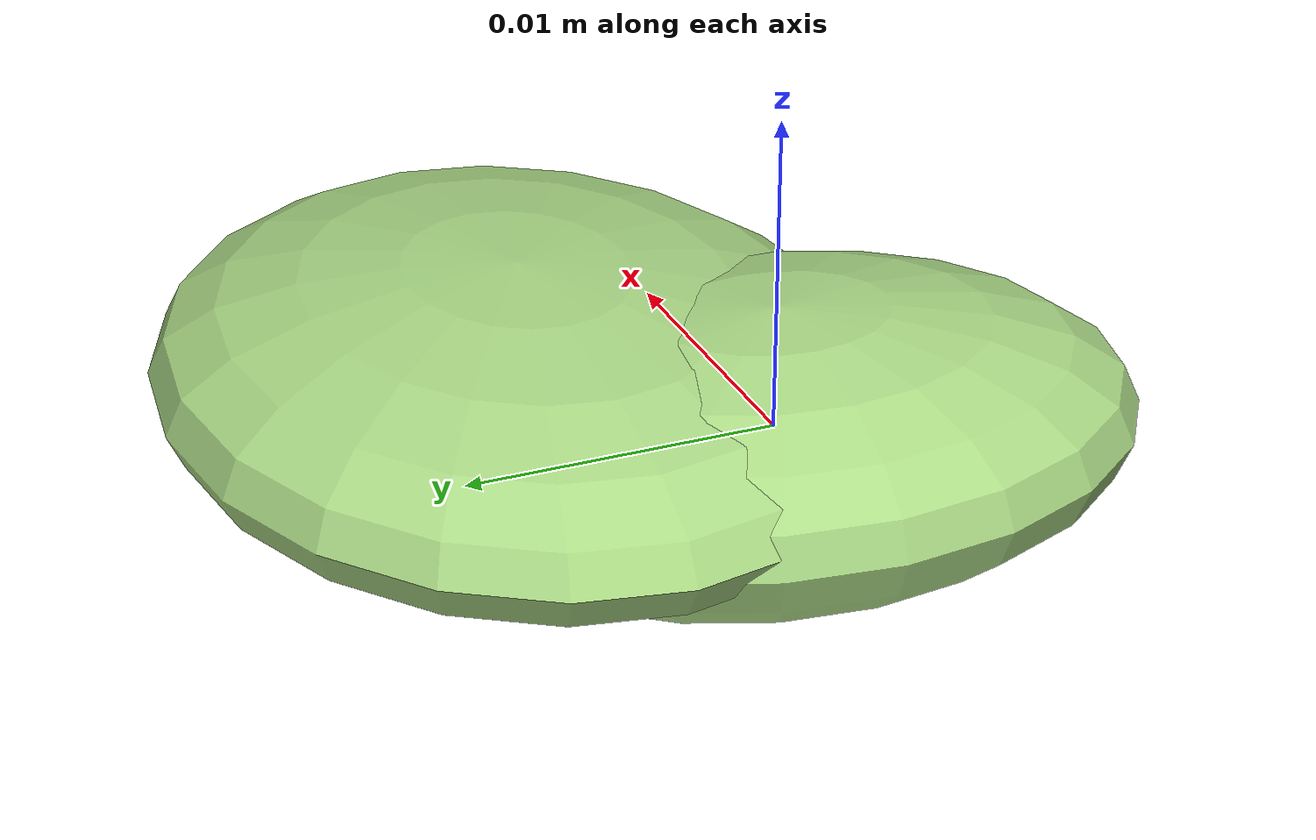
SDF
<?xml version="1.0" ?>
<!-- |    This document was autogenerated by xmacro from data/veggie_template/veggie_base.sdf.xacro  | -->
<!-- |    EDITING THIS FILE BY HAND IS NOT RECOMMENDED                                               | -->
<sdf version="1.8">
	<!-- Parameters -->
	<!-- Base -->
	<!-- Joint 0 -->
	<!-- Link 1 -->
	<!-- Joint 1 -->
	<!-- Link 2 -->
	<!-- Primitives -->
	<!-- All dimensions are half -->
	<!-- Object -->
	<model name="veggie">
		<!-- link0 -->
		<link name="link0">
			<inertial>
				<mass>0.0017733099737250165</mass>
				<inertia>
					<ixx>5.474175016276107e-08</ixx>
					<ixy>0</ixy>
					<ixz>0</ixz>
					<iyy>3.411328205568534e-08</iyy>
					<iyz>0</iyz>
					<izz>7.734385646149612e-08</izz>
				</inertia>
			</inertial>
			<visual name="link0_visual">
				<pose>0 0 0 0 0 0</pose>
				<geometry>
					<ellipsoid>
						<radii>0.008941865458892029 0.011752476251633462 0.004028445740380829</radii>
					</ellipsoid>
				</geometry>
				<material>
					<ambient>0.659 0.839 0.514 1</ambient>
					<diffuse>0.659 0.839 0.514 1</diffuse>
					<specular>0 0 0 0</specular>
					<emissive>0 0 0 1</emissive>
				</material>
			</visual>
			<collision name="link0_collision">
				<pose>0 0 0 0 0 0 </pose>
				<geometry>
					<ellipsoid>
						<radii>0.008941865458892029 0.011752476251633462 0.004028445740380829</radii>
					</ellipsoid>
				</geometry>
			</collision>
		</link>
		<!-- link1 -->
		<joint name="joint0" type="fixed">
			<pose relative_to="link0">0.005185736469892793 0.006369025604956209 0.000595354840934659 0.0 0.0 0.0</pose>
			<parent>link0</parent>
			<child>link1</child>
		</joint>
		<link name="link1">
			<pose relative_to="joint0">0 0 0 0 0 0</pose>
			<inertial>
				<mass>0.002485555827884777</mass>
				<inertia>
					<ixx>6.986537422617626e-08</ixx>
					<ixy>0</ixy>
					<ixz>0</ixz>
					<iyy>1.0454168220177932e-07</iyy>
					<iyz>0</iyz>
					<izz>1.6027493202200048e-07</izz>
				</inertia>
			</inertial>
			<visual name="link1_visual">
				<pose>0 0 0 0 0 0</pose>
				<geometry>
					<ellipsoid>
						<radii>0.014003005008857903 0.011239595559154611 0.003770178992200707</radii>
					</ellipsoid>
				</geometry>
				<material>
					<ambient>0.659 0.839 0.514 1</ambient>
					<diffuse>0.659 0.839 0.514 1</diffuse>
					<specular>0 0 0 0</specular>
					<emissive>0 0 0 1</emissive>
				</material>
			</visual>
			<collision name="link1_collision">
				<pose>0 0 0 0 0 0 </pose>
				<geometry>
					<ellipsoid>
						<radii>0.014003005008857903 0.011239595559154611 0.003770178992200707</radii>
					</ellipsoid>
				</geometry>
			</collision>
		</link>
		<!-- link2 -->
	</model>
</sdf>
